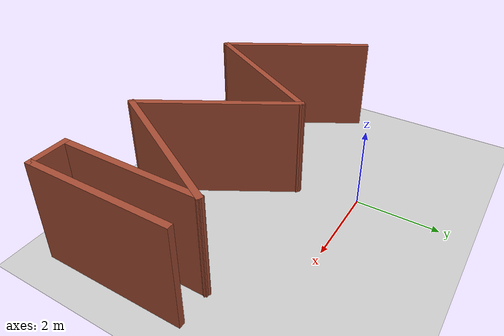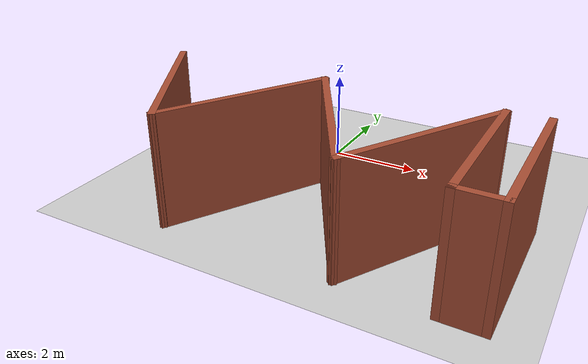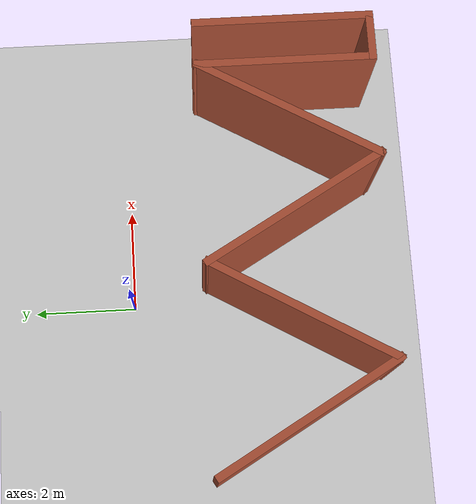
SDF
<sdf version="1.6">
 <world name="default">
  <light name="sun" type="directional">
   <pose>0 0 10 0 -0 0</pose>
   <diffuse>0.8 0.8 0.8 1</diffuse>
   <specular>0.2 0.2 0.2 1</specular>
   <attenuation>
    <range>1000</range>
    <constant>0.9</constant>
    <linear>0.01</linear>
    <quadratic>0.001</quadratic>
   </attenuation>
   <direction>-0.5 0.1 -0.9</direction>
  </light>
  <model name="ground_plane">
   <static>1</static>
   <link name="link">
    <collision name="collision">
     <geometry><plane><normal>0 0 1</normal><size>100 100</size></plane></geometry>
     <surface>
      <contact><collide_bitmask>65535</collide_bitmask></contact>
      <friction><ode><mu>100</mu><mu2>50</mu2></ode></friction>
     </surface>
    </collision>
    <visual name="visual">
     <cast_shadows>0</cast_shadows>
     <geometry><plane><normal>0 0 1</normal><size>100 100</size></plane></geometry>
     <material>
      <script><uri>file://media/materials/scripts/gazebo.material</uri><name>Gazebo/Grey</name></script>
     </material>
    </visual>
   </link>
  </model>
  <gravity>0 0 -9.8</gravity>
  <magnetic_field>6e-06 2.3e-05 -4.2e-05</magnetic_field>
  <atmosphere type="adiabatic"/>
  <physics name="default_physics" default="0" type="ode">
   <max_step_size>0.001</max_step_size>
   <real_time_factor>1</real_time_factor>
   <real_time_update_rate>1000</real_time_update_rate>
  </physics>
  <scene><ambient>0.4 0.4 0.4 1</ambient><background>0.7 0.7 0.7 1</background><shadows>1</shadows></scene>
  <audio><device>default</device></audio>
  <spherical_coordinates>
   <surface_model>EARTH_WGS84</surface_model>
   <latitude_deg>0</latitude_deg>
   <longitude_deg>0</longitude_deg>
   <elevation>0</elevation>
   <heading_deg>0</heading_deg>
  </spherical_coordinates>
  <model name="MyWBuilding">
   <pose>0.761274 -3.1371 0 0 -0 0</pose>
   <link name="Wall_10">
    <collision name="Wall_10_Collision">
     <geometry><box><size>4 0.15 2.5</size></box></geometry>
     <pose>0 0 1.25 0 -0 0</pose>
    </collision>
    <visual name="Wall_10_Visual">
     <pose>0 0 1.25 0 -0 0</pose>
     <geometry><box><size>4 0.15 2.5</size></box></geometry>
     <material>
      <script><uri>file://media/materials/scripts/gazebo.material</uri><name>Gazebo/Bricks</name></script>
      <ambient>1 1 1 1</ambient>
     </material>
     <meta><layer>0</layer></meta>
    </visual>
    <pose>-1.37377 0 0 0 -0 1.0472</pose>
   </link>
   <link name="Wall_11">
    <collision name="Wall_11_Collision">
     <geometry><box><size>4 0.15 2.5</size></box></geometry>
     <pose>0 0 1.25 0 -0 0</pose>
    </collision>
    <visual name="Wall_11_Visual">
     <pose>0 0 1.25 0 -0 0</pose>
     <geometry><box><size>4 0.15 2.5</size></box></geometry>
     <material>
      <script><uri>file://media/materials/scripts/gazebo.material</uri><name>Gazebo/Bricks</name></script>
      <ambient>1 1 1 1</ambient>
     </material>
     <meta><layer>0</layer></meta>
    </visual>
    <pose>0.551226 0 0 0 -0 -1.0472</pose>
   </link>
   <link name="Wall_12">
    <collision name="Wall_12_Collision">
     <geometry><box><size>4 0.15 2.5</size></box></geometry>
     <pose>0 0 1.25 0 -0 0</pose>
    </collision>
    <visual name="Wall_12_Visual">
     <pose>0 0 1.25 0 -0 0</pose>
     <geometry><box><size>4 0.15 2.5</size></box></geometry>
     <material>
      <script><uri>file://media/materials/scripts/gazebo.material</uri><name>Gazebo/Bricks</name></script>
      <ambient>1 1 1 1</ambient>
     </material>
     <meta><layer>0</layer></meta>
    </visual>
    <pose>2.47623 0 0 0 -0 1.0472</pose>
   </link>
   <link name="Wall_13">
    <collision name="Wall_13_Collision">
     <geometry><box><size>3.5 0.15 2.5</size></box></geometry>
     <pose>0 0 1.25 0 -0 0</pose>
    </collision>
    <visual name="Wall_13_Visual">
     <pose>0 0 1.25 0 -0 0</pose>
     <geometry><box><size>3.5 0.15 2.5</size></box></geometry>
     <material>
      <script><uri>file://media/materials/scripts/gazebo.material</uri><name>Gazebo/Bricks</name></script>
      <ambient>1 1 1 1</ambient>
     </material>
     <meta><layer>0</layer></meta>
    </visual>
    <pose>3.43872 -0.007901 0 0 -0 -1.5708</pose>
   </link>
   <link name="Wall_14">
    <collision name="Wall_14_Collision">
     <geometry><box><size>1 0.15 2.5</size></box></geometry>
     <pose>0 0 1.25 0 -0 0</pose>
    </collision>
    <visual name="Wall_14_Visual">
     <pose>0 0 1.25 0 -0 0</pose>
     <geometry><box><size>1 0.15 2.5</size></box></geometry>
     <material>
      <script><uri>file://media/materials/scripts/gazebo.material</uri><name>Gazebo/Bricks</name></script>
      <ambient>1 1 1 1</ambient>
     </material>
     <meta><layer>0</layer></meta>
    </visual>
    <pose>3.86373 -1.6829 0 0 -0 0</pose>
   </link>
   <link name="Wall_15">
    <collision name="Wall_15_Collision">
     <geometry><box><size>3.5 0.15 2.5</size></box></geometry>
     <pose>0 0 1.25 0 -0 0</pose>
    </collision>
    <visual name="Wall_15_Visual">
     <pose>0 0 1.25 0 -0 0</pose>
     <geometry><box><size>3.5 0.15 2.5</size></box></geometry>
     <material>
      <script><uri>file://media/materials/scripts/gazebo.material</uri><name>Gazebo/Bricks</name></script>
      <ambient>1 1 1 1</ambient>
     </material>
     <meta><layer>0</layer></meta>
    </visual>
    <pose>4.28873 -0.007901 0 0 -0 1.5708</pose>
   </link>
   <link name="Wall_9">
    <collision name="Wall_9_Collision">
     <geometry><box><size>4 0.15 2.5</size></box></geometry>
     <pose>0 0 1.25 0 -0 0</pose>
    </collision>
    <visual name="Wall_9_Visual">
     <pose>0 0 1.25 0 -0 0</pose>
     <geometry><box><size>4 0.15 2.5</size></box></geometry>
     <material>
      <script><uri>file://media/materials/scripts/gazebo.material</uri><name>Gazebo/Bricks</name></script>
      <ambient>1 1 1 1</ambient>
     </material>
     <meta><layer>0</layer></meta>
    </visual>
    <pose>-3.29877 0 0 0 -0 -1.0472</pose>
   </link>
   <static>1</static>
  </model>
 </world>
</sdf>
